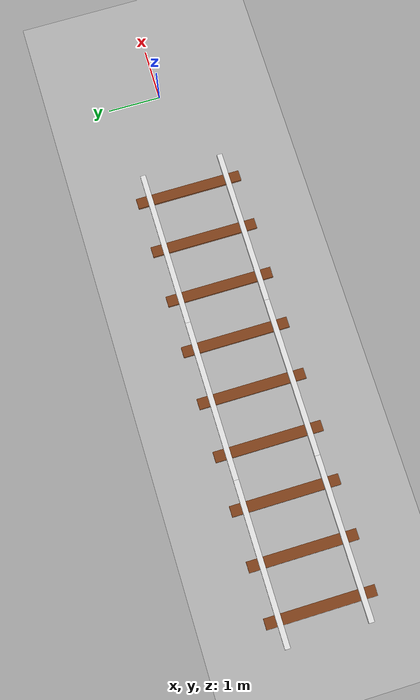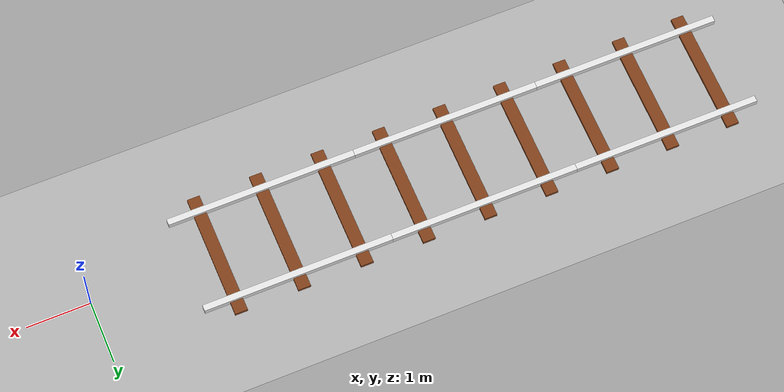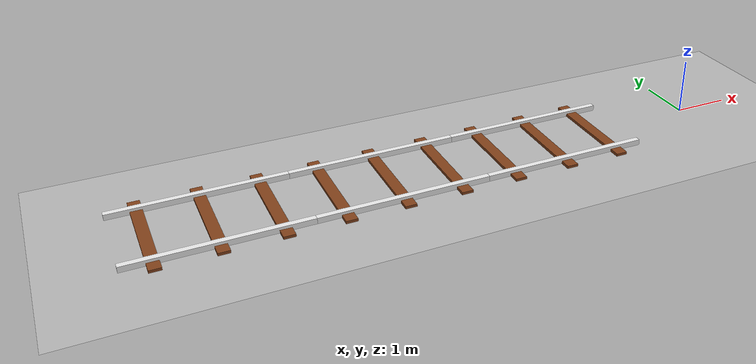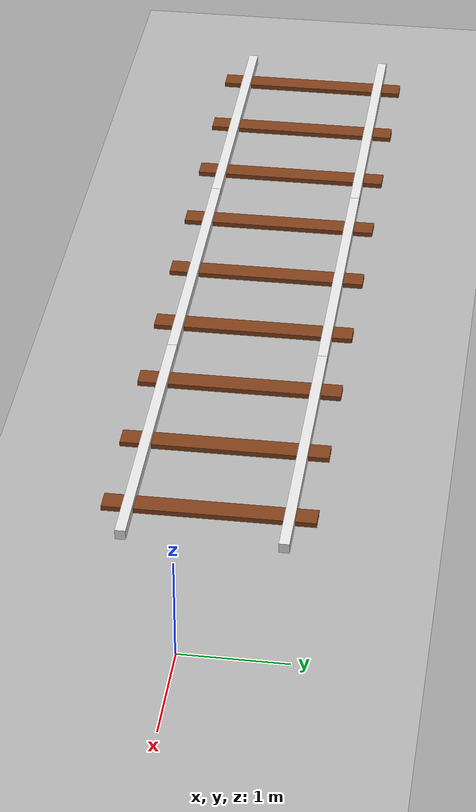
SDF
<sdf version="1.10">
 <world name="myworld">
  <model name="rail-2">
   <static>true</static>
   <pose>-3 0 0 0 0 0</pose>
   <link name="rail_link">
    <visual name="rail_left">
     <pose>0 0.75 0.050000000000000003 0 0 0</pose>
     <geometry><box><size>3 0.10000000000000001 0.10000000000000001</size></box></geometry>
     <material>
      <ambient>0.800000012 0.800000012 0.800000012 1</ambient>
      <diffuse>0.899999976 0.899999976 0.899999976 1</diffuse>
     </material>
    </visual>
    <visual name="rail_right">
     <pose>0 -0.75 0.050000000000000003 0 0 0</pose>
     <geometry><box><size>3 0.10000000000000001 0.10000000000000001</size></box></geometry>
     <material>
      <ambient>0.800000012 0.800000012 0.800000012 1</ambient>
      <diffuse>0.899999976 0.899999976 0.899999976 1</diffuse>
     </material>
    </visual>
    <visual name="traverse_1">
     <pose>1 0 0.025000000000000001 0 0 0</pose>
     <geometry><box><size>0.20000000000000001 2 0.050000000000000003</size></box></geometry>
     <material>
      <ambient>0.400000006 0.200000003 0.100000001 1</ambient>
      <diffuse>0.5 0.25 0.100000001 1</diffuse>
     </material>
    </visual>
    <visual name="traverse_2">
     <pose>0 0 0.025000000000000001 0 0 0</pose>
     <geometry><box><size>0.20000000000000001 2 0.050000000000000003</size></box></geometry>
     <material>
      <ambient>0.400000006 0.200000003 0.100000001 1</ambient>
      <diffuse>0.5 0.25 0.100000001 1</diffuse>
     </material>
    </visual>
    <visual name="traverse_3">
     <pose>-1 0 0.025000000000000001 0 0 0</pose>
     <geometry><box><size>0.20000000000000001 2 0.050000000000000003</size></box></geometry>
     <material>
      <ambient>0.400000006 0.200000003 0.100000001 1</ambient>
      <diffuse>0.5 0.25 0.100000001 1</diffuse>
     </material>
    </visual>
    <inertial>
     <mass>1</mass>
     <inertia><ixx>1</ixx><ixy>0</ixy><ixz>0</ixz><iyy>1</iyy><iyz>0</iyz><izz>1</izz></inertia>
    </inertial>
   </link>
  </model>
  <model name="rail-3">
   <static>true</static>
   <pose>-6 0 0 0 0 0</pose>
   <link name="rail_link">
    <visual name="rail_left">
     <pose>0 0.75 0.050000000000000003 0 0 0</pose>
     <geometry><box><size>3 0.10000000000000001 0.10000000000000001</size></box></geometry>
     <material>
      <ambient>0.800000012 0.800000012 0.800000012 1</ambient>
      <diffuse>0.899999976 0.899999976 0.899999976 1</diffuse>
     </material>
    </visual>
    <visual name="rail_right">
     <pose>0 -0.75 0.050000000000000003 0 0 0</pose>
     <geometry><box><size>3 0.10000000000000001 0.10000000000000001</size></box></geometry>
     <material>
      <ambient>0.800000012 0.800000012 0.800000012 1</ambient>
      <diffuse>0.899999976 0.899999976 0.899999976 1</diffuse>
     </material>
    </visual>
    <visual name="traverse_1">
     <pose>1 0 0.025000000000000001 0 0 0</pose>
     <geometry><box><size>0.20000000000000001 2 0.050000000000000003</size></box></geometry>
     <material>
      <ambient>0.400000006 0.200000003 0.100000001 1</ambient>
      <diffuse>0.5 0.25 0.100000001 1</diffuse>
     </material>
    </visual>
    <visual name="traverse_2">
     <pose>0 0 0.025000000000000001 0 0 0</pose>
     <geometry><box><size>0.20000000000000001 2 0.050000000000000003</size></box></geometry>
     <material>
      <ambient>0.400000006 0.200000003 0.100000001 1</ambient>
      <diffuse>0.5 0.25 0.100000001 1</diffuse>
     </material>
    </visual>
    <visual name="traverse_3">
     <pose>-1 0 0.025000000000000001 0 0 0</pose>
     <geometry><box><size>0.20000000000000001 2 0.050000000000000003</size></box></geometry>
     <material>
      <ambient>0.400000006 0.200000003 0.100000001 1</ambient>
      <diffuse>0.5 0.25 0.100000001 1</diffuse>
     </material>
    </visual>
    <inertial>
     <mass>1</mass>
     <inertia><ixx>1</ixx><ixy>0</ixy><ixz>0</ixz><iyy>1</iyy><iyz>0</iyz><izz>1</izz></inertia>
    </inertial>
   </link>
  </model>
  <model name="rail-4">
   <static>true</static>
   <pose>-9 0 0 0 0 0</pose>
   <link name="rail_link">
    <visual name="rail_left">
     <pose>0 0.75 0.050000000000000003 0 0 0</pose>
     <geometry><box><size>3 0.10000000000000001 0.10000000000000001</size></box></geometry>
     <material>
      <ambient>0.800000012 0.800000012 0.800000012 1</ambient>
      <diffuse>0.899999976 0.899999976 0.899999976 1</diffuse>
     </material>
    </visual>
    <visual name="rail_right">
     <pose>0 -0.75 0.050000000000000003 0 0 0</pose>
     <geometry><box><size>3 0.10000000000000001 0.10000000000000001</size></box></geometry>
     <material>
      <ambient>0.800000012 0.800000012 0.800000012 1</ambient>
      <diffuse>0.899999976 0.899999976 0.899999976 1</diffuse>
     </material>
    </visual>
    <visual name="traverse_1">
     <pose>1 0 0.025000000000000001 0 0 0</pose>
     <geometry><box><size>0.20000000000000001 2 0.050000000000000003</size></box></geometry>
     <material>
      <ambient>0.400000006 0.200000003 0.100000001 1</ambient>
      <diffuse>0.5 0.25 0.100000001 1</diffuse>
     </material>
    </visual>
    <visual name="traverse_2">
     <pose>0 0 0.025000000000000001 0 0 0</pose>
     <geometry><box><size>0.20000000000000001 2 0.050000000000000003</size></box></geometry>
     <material>
      <ambient>0.400000006 0.200000003 0.100000001 1</ambient>
      <diffuse>0.5 0.25 0.100000001 1</diffuse>
     </material>
    </visual>
    <visual name="traverse_3">
     <pose>-1 0 0.025000000000000001 0 0 0</pose>
     <geometry><box><size>0.20000000000000001 2 0.050000000000000003</size></box></geometry>
     <material>
      <ambient>0.400000006 0.200000003 0.100000001 1</ambient>
      <diffuse>0.5 0.25 0.100000001 1</diffuse>
     </material>
    </visual>
    <inertial>
     <mass>1</mass>
     <inertia><ixx>1</ixx><ixy>0</ixy><ixz>0</ixz><iyy>1</iyy><iyz>0</iyz><izz>1</izz></inertia>
    </inertial>
   </link>
  </model>
  <model name="ground_plane">
   <static>true</static>
   <link name="link">
    <collision name="collision">
     <geometry><plane><normal>0 0 1</normal><size>1000 1000</size></plane></geometry>
    </collision>
    <visual name="visual">
     <geometry><plane><normal>0 0 1</normal><size>1000 1000</size></plane></geometry>
     <material>
      <ambient>0.699999988 0.699999988 0.699999988 1</ambient>
      <diffuse>0.699999988 0.699999988 0.699999988 1</diffuse>
     </material>
    </visual>
    <inertial>
     <mass>1</mass>
     <inertia><ixx>1</ixx><ixy>0</ixy><ixz>0</ixz><iyy>1</iyy><iyz>0</iyz><izz>1</izz></inertia>
    </inertial>
   </link>
  </model>
 </world>
</sdf>
